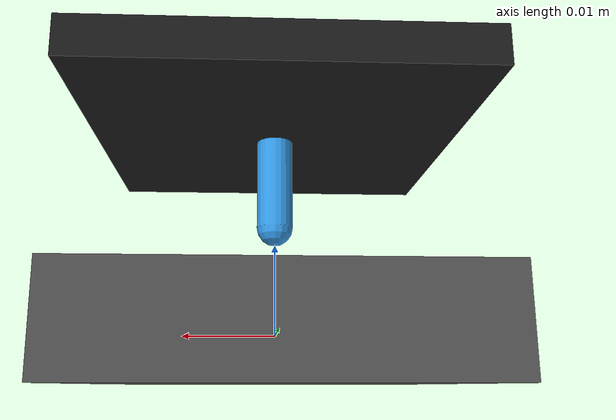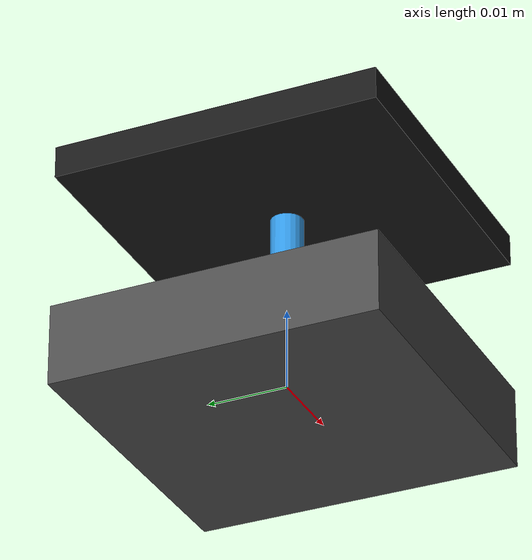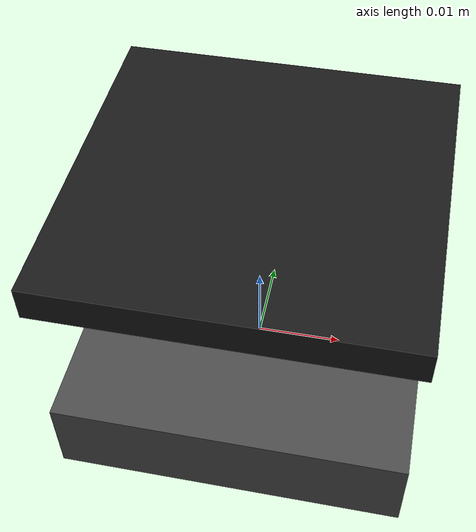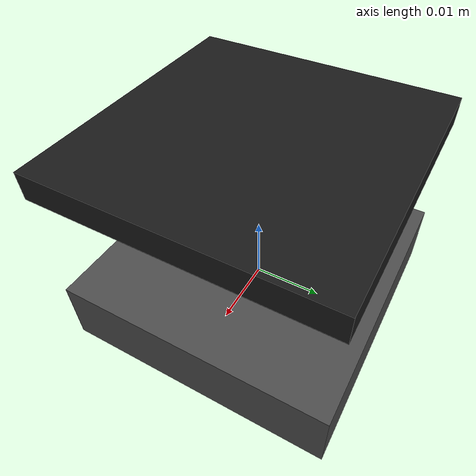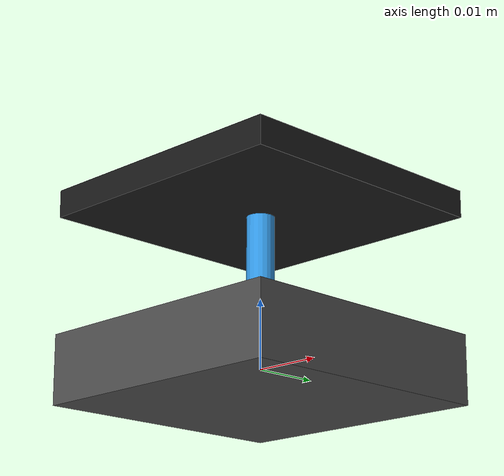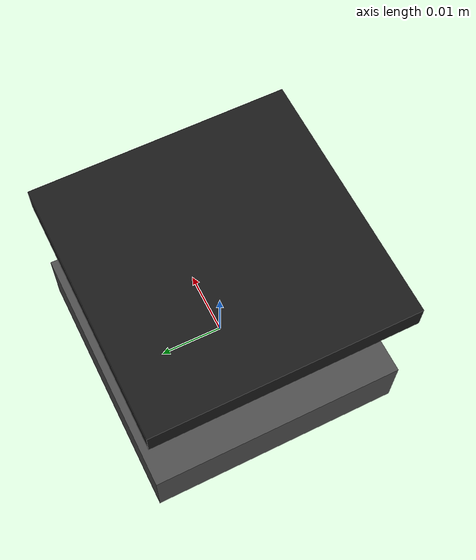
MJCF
<mujoco model="spike_spring_test">
  <!-- smaller timestep + more iterations -->
  <option timestep="0.0002"
          gravity="0 0 0"
          integrator="implicitfast"
          iterations="400"
          tolerance="1e-10"/>

  <worldbody>
    <body name="base" pos="0 0 0">
      <geom name="base_geom" type="box" size="0.02 0.02 0.005"
            rgba="0.3 0.3 0.3 1"
            contype="1" conaffinity="1"/>

      <!-- Spike tip -->
      <body name="spike_tip" pos="0 0 0.012">
        <!-- DOWN compression is positive because axis is -Z -->
        <joint name="spike_z" type="slide" axis="0 0 -1"
               limited="true" range="0 0.002"
               stiffness="5000" damping="2"/>

        <geom name="tip_geom"
              type="capsule" fromto="0 0 0  0 0 0.010" size="0.002"
              rgba="0.2 0.6 0.9 1"
              contype="1" conaffinity="1"
              friction="1.0 0.01 0.001"
              margin="0.002"
              solref="0.01 1" solimp="0.95 0.99 0.001"/>
      </body>
    </body>

    <!-- Indenter starts close -->
    <body name="indenter" pos="0 0 0.024">
      <joint name="indenter_z" type="slide" axis="0 0 -1"
             limited="true" range="0 0.008"/>

      <geom name="indenter_geom" type="box" size="0.02 0.02 0.002"
            rgba="0.1 0.1 0.1 1"
            contype="1" conaffinity="1"
            margin="0.002"
            solref="0.01 1" solimp="0.95 0.99 0.001"/>
    </body>
  </worldbody>

  <actuator>
    <!-- LOW gains to avoid tunneling -->
    <position name="indenter_servo" joint="indenter_z"
              kp="60" kv="6"
              ctrllimited="true" ctrlrange="0 0.008"/>
  </actuator>
</mujoco>
